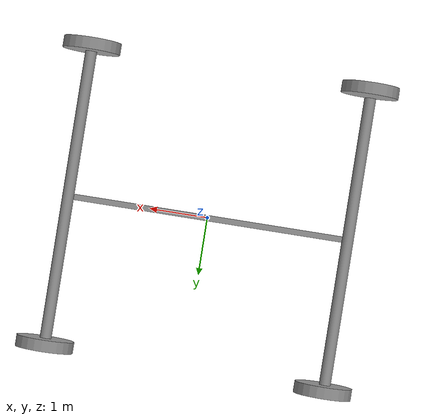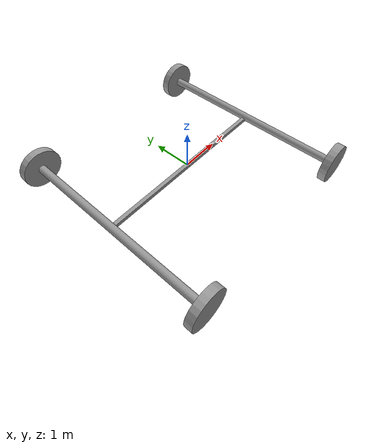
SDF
<?xml version='1.0'?>
<sdf version='1.6'>
  <model name='four-wheel'>
    <link name='link_0'>
      <inertial>
        <mass>1</mass>
        <inertia>
          <ixx>0.145833</ixx>
          <ixy>0</ixy>
          <ixz>0</ixz>
          <iyy>0.145833</iyy>
          <iyz>0</iyz>
          <izz>0.125</izz>
        </inertia>
        <pose frame=''>0 0 0 0 -0 0</pose>
      </inertial>
      <pose frame=''>-2.44876 0.027983 0.012129 -1.5696 0 0</pose>
      <gravity>1</gravity>
      <self_collide>0</self_collide>
      <kinematic>0</kinematic>
      <enable_wind>0</enable_wind>
      <visual name='visual'>
        <pose frame=''>0 0 0 0 -0 0</pose>
        <geometry>
          <cylinder>
            <radius>0.1</radius>
            <length>5</length>
          </cylinder>
        </geometry>
        <material>
          <lighting>1</lighting>
          <script>
            <uri>file://media/materials/scripts/gazebo.material</uri>
            <name>Gazebo/Grey</name>
          </script>
          <shader type='pixel'>
            <normal_map>__default__</normal_map>
          </shader>
          <ambient>0.3 0.3 0.3 1</ambient>
          <diffuse>0.7 0.7 0.7 1</diffuse>
          <specular>0.01 0.01 0.01 1</specular>
          <emissive>0 0 0 1</emissive>
        </material>
        <transparency>0</transparency>
        <cast_shadows>1</cast_shadows>
      </visual>
      <collision name='collision'>
        <laser_retro>0</laser_retro>
        <max_contacts>10</max_contacts>
        <pose frame=''>0 0 0 0 -0 0</pose>
        <geometry>
          <cylinder>
            <radius>0.1</radius>
            <length>5</length>
          </cylinder>
        </geometry>
        <surface>
          <friction>
            <ode>
              <mu>1</mu>
              <mu2>1</mu2>
              <fdir1>0 0 0</fdir1>
              <slip1>0</slip1>
              <slip2>0</slip2>
            </ode>
            <torsional>
              <coefficient>1</coefficient>
              <patch_radius>0</patch_radius>
              <surface_radius>0</surface_radius>
              <use_patch_radius>1</use_patch_radius>
              <ode>
                <slip>0</slip>
              </ode>
            </torsional>
          </friction>
          <bounce>
            <restitution_coefficient>0</restitution_coefficient>
            <threshold>1e+06</threshold>
          </bounce>
          <contact>
            <collide_without_contact>0</collide_without_contact>
            <collide_without_contact_bitmask>1</collide_without_contact_bitmask>
            <collide_bitmask>1</collide_bitmask>
            <ode>
              <soft_cfm>0</soft_cfm>
              <soft_erp>0.2</soft_erp>
              <kp>1e+13</kp>
              <kd>1</kd>
              <max_vel>0.01</max_vel>
              <min_depth>0</min_depth>
            </ode>
            <bullet>
              <split_impulse>1</split_impulse>
              <split_impulse_penetration_threshold>-0.01</split_impulse_penetration_threshold>
              <soft_cfm>0</soft_cfm>
              <soft_erp>0.2</soft_erp>
              <kp>1e+13</kp>
              <kd>1</kd>
            </bullet>
          </contact>
        </surface>
      </collision>
    </link>
    <link name='link_0_clone'>
      <inertial>
        <mass>1</mass>
        <inertia>
          <ixx>0.145833</ixx>
          <ixy>0</ixy>
          <ixz>0</ixz>
          <iyy>0.145833</iyy>
          <iyz>0</iyz>
          <izz>0.125</izz>
        </inertia>
        <pose frame=''>0 0 0 0 -0 0</pose>
      </inertial>
      <pose frame=''>2.42657 -0.016617 0.012129 -1.5696 0 0</pose>
      <gravity>1</gravity>
      <self_collide>0</self_collide>
      <kinematic>0</kinematic>
      <enable_wind>0</enable_wind>
      <visual name='visual'>
        <pose frame=''>0 0 0 0 -0 0</pose>
        <geometry>
          <cylinder>
            <radius>0.1</radius>
            <length>5</length>
          </cylinder>
        </geometry>
        <material>
          <lighting>1</lighting>
          <script>
            <uri>file://media/materials/scripts/gazebo.material</uri>
            <name>Gazebo/Grey</name>
          </script>
          <shader type='pixel'>
            <normal_map>__default__</normal_map>
          </shader>
          <ambient>0.3 0.3 0.3 1</ambient>
          <diffuse>0.7 0.7 0.7 1</diffuse>
          <specular>0.01 0.01 0.01 1</specular>
          <emissive>0 0 0 1</emissive>
        </material>
        <transparency>0</transparency>
        <cast_shadows>1</cast_shadows>
      </visual>
      <collision name='collision'>
        <laser_retro>0</laser_retro>
        <max_contacts>10</max_contacts>
        <pose frame=''>0 0 0 0 -0 0</pose>
        <geometry>
          <cylinder>
            <radius>0.1</radius>
            <length>5</length>
          </cylinder>
        </geometry>
        <surface>
          <friction>
            <ode>
              <mu>1</mu>
              <mu2>1</mu2>
              <fdir1>0 0 0</fdir1>
              <slip1>0</slip1>
              <slip2>0</slip2>
            </ode>
            <torsional>
              <coefficient>1</coefficient>
              <patch_radius>0</patch_radius>
              <surface_radius>0</surface_radius>
              <use_patch_radius>1</use_patch_radius>
              <ode>
                <slip>0</slip>
              </ode>
            </torsional>
          </friction>
          <bounce>
            <restitution_coefficient>0</restitution_coefficient>
            <threshold>1e+06</threshold>
          </bounce>
          <contact>
            <collide_without_contact>0</collide_without_contact>
            <collide_without_contact_bitmask>1</collide_without_contact_bitmask>
            <collide_bitmask>1</collide_bitmask>
            <ode>
              <soft_cfm>0</soft_cfm>
              <soft_erp>0.2</soft_erp>
              <kp>1e+13</kp>
              <kd>1</kd>
              <max_vel>0.01</max_vel>
              <min_depth>0</min_depth>
            </ode>
            <bullet>
              <split_impulse>1</split_impulse>
              <split_impulse_penetration_threshold>-0.01</split_impulse_penetration_threshold>
              <soft_cfm>0</soft_cfm>
              <soft_erp>0.2</soft_erp>
              <kp>1e+13</kp>
              <kd>1</kd>
            </bullet>
          </contact>
        </surface>
      </collision>
    </link>
    <link name='link_1'>
      <inertial>
        <mass>1</mass>
        <inertia>
          <ixx>0.145833</ixx>
          <ixy>0</ixy>
          <ixz>0</ixz>
          <iyy>0.145833</iyy>
          <iyz>0</iyz>
          <izz>0.125</izz>
        </inertia>
        <pose frame=''>0 0 0 0 -0 0</pose>
      </inertial>
      <pose frame=''>-2.42876 -2.61265 -0.007851 -1.57182 0 0</pose>
      <gravity>1</gravity>
      <self_collide>0</self_collide>
      <kinematic>0</kinematic>
      <enable_wind>0</enable_wind>
      <visual name='visual'>
        <pose frame=''>0 0 0 0 -0 0</pose>
        <geometry>
          <cylinder>
            <radius>0.5</radius>
            <length>0.2</length>
          </cylinder>
        </geometry>
        <material>
          <lighting>1</lighting>
          <script>
            <uri>file://media/materials/scripts/gazebo.material</uri>
            <name>Gazebo/Grey</name>
          </script>
          <shader type='pixel'>
            <normal_map>__default__</normal_map>
          </shader>
          <ambient>0.3 0.3 0.3 1</ambient>
          <diffuse>0.7 0.7 0.7 1</diffuse>
          <specular>0.01 0.01 0.01 1</specular>
          <emissive>0 0 0 1</emissive>
        </material>
        <transparency>0</transparency>
        <cast_shadows>1</cast_shadows>
      </visual>
      <collision name='collision'>
        <laser_retro>0</laser_retro>
        <max_contacts>10</max_contacts>
        <pose frame=''>0 0 0 0 -0 0</pose>
        <geometry>
          <cylinder>
            <radius>0.5</radius>
            <length>0.2</length>
          </cylinder>
        </geometry>
        <surface>
          <friction>
            <ode>
              <mu>1</mu>
              <mu2>1</mu2>
              <fdir1>0 0 0</fdir1>
              <slip1>0</slip1>
              <slip2>0</slip2>
            </ode>
            <torsional>
              <coefficient>1</coefficient>
              <patch_radius>0</patch_radius>
              <surface_radius>0</surface_radius>
              <use_patch_radius>1</use_patch_radius>
              <ode>
                <slip>0</slip>
              </ode>
            </torsional>
          </friction>
          <bounce>
            <restitution_coefficient>0</restitution_coefficient>
            <threshold>1e+06</threshold>
          </bounce>
          <contact>
            <collide_without_contact>0</collide_without_contact>
            <collide_without_contact_bitmask>1</collide_without_contact_bitmask>
            <collide_bitmask>1</collide_bitmask>
            <ode>
              <soft_cfm>0</soft_cfm>
              <soft_erp>0.2</soft_erp>
              <kp>1e+13</kp>
              <kd>1</kd>
              <max_vel>0.01</max_vel>
              <min_depth>0</min_depth>
            </ode>
            <bullet>
              <split_impulse>1</split_impulse>
              <split_impulse_penetration_threshold>-0.01</split_impulse_penetration_threshold>
              <soft_cfm>0</soft_cfm>
              <soft_erp>0.2</soft_erp>
              <kp>1e+13</kp>
              <kd>1</kd>
            </bullet>
          </contact>
        </surface>
      </collision>
    </link>
    <link name='link_1_clone'>
      <inertial>
        <mass>1</mass>
        <inertia>
          <ixx>0.145833</ixx>
          <ixy>0</ixy>
          <ixz>0</ixz>
          <iyy>0.145833</iyy>
          <iyz>0</iyz>
          <izz>0.125</izz>
        </inertia>
        <pose frame=''>0 0 0 0 -0 0</pose>
      </inertial>
      <pose frame=''>-2.42876 2.62866 -0.007871 -1.57182 0 0</pose>
      <gravity>1</gravity>
      <self_collide>0</self_collide>
      <kinematic>0</kinematic>
      <enable_wind>0</enable_wind>
      <visual name='visual'>
        <pose frame=''>0 0 0 0 -0 0</pose>
        <geometry>
          <cylinder>
            <radius>0.5</radius>
            <length>0.2</length>
          </cylinder>
        </geometry>
        <material>
          <lighting>1</lighting>
          <script>
            <uri>file://media/materials/scripts/gazebo.material</uri>
            <name>Gazebo/Grey</name>
          </script>
          <shader type='pixel'>
            <normal_map>__default__</normal_map>
          </shader>
          <ambient>0.3 0.3 0.3 1</ambient>
          <diffuse>0.7 0.7 0.7 1</diffuse>
          <specular>0.01 0.01 0.01 1</specular>
          <emissive>0 0 0 1</emissive>
        </material>
        <transparency>0</transparency>
        <cast_shadows>1</cast_shadows>
      </visual>
      <collision name='collision'>
        <laser_retro>0</laser_retro>
        <max_contacts>10</max_contacts>
        <pose frame=''>0 0 0 0 -0 0</pose>
        <geometry>
          <cylinder>
            <radius>0.5</radius>
            <length>0.2</length>
          </cylinder>
        </geometry>
        <surface>
          <friction>
            <ode>
              <mu>1</mu>
              <mu2>1</mu2>
              <fdir1>0 0 0</fdir1>
              <slip1>0</slip1>
              <slip2>0</slip2>
            </ode>
            <torsional>
              <coefficient>1</coefficient>
              <patch_radius>0</patch_radius>
              <surface_radius>0</surface_radius>
              <use_patch_radius>1</use_patch_radius>
              <ode>
                <slip>0</slip>
              </ode>
            </torsional>
          </friction>
          <bounce>
            <restitution_coefficient>0</restitution_coefficient>
            <threshold>1e+06</threshold>
          </bounce>
          <contact>
            <collide_without_contact>0</collide_without_contact>
            <collide_without_contact_bitmask>1</collide_without_contact_bitmask>
            <collide_bitmask>1</collide_bitmask>
            <ode>
              <soft_cfm>0</soft_cfm>
              <soft_erp>0.2</soft_erp>
              <kp>1e+13</kp>
              <kd>1</kd>
              <max_vel>0.01</max_vel>
              <min_depth>0</min_depth>
            </ode>
            <bullet>
              <split_impulse>1</split_impulse>
              <split_impulse_penetration_threshold>-0.01</split_impulse_penetration_threshold>
              <soft_cfm>0</soft_cfm>
              <soft_erp>0.2</soft_erp>
              <kp>1e+13</kp>
              <kd>1</kd>
            </bullet>
          </contact>
        </surface>
      </collision>
    </link>
    <link name='link_1_clone_0'>
      <inertial>
        <mass>1</mass>
        <inertia>
          <ixx>0.145833</ixx>
          <ixy>0</ixy>
          <ixz>0</ixz>
          <iyy>0.145833</iyy>
          <iyz>0</iyz>
          <izz>0.125</izz>
        </inertia>
        <pose frame=''>0 0 0 0 -0 0</pose>
      </inertial>
      <pose frame=''>2.42657 2.58401 0.012129 -1.57182 0 0</pose>
      <gravity>1</gravity>
      <self_collide>0</self_collide>
      <kinematic>0</kinematic>
      <enable_wind>0</enable_wind>
      <visual name='visual'>
        <pose frame=''>0 0 0 0 -0 0</pose>
        <geometry>
          <cylinder>
            <radius>0.5</radius>
            <length>0.2</length>
          </cylinder>
        </geometry>
        <material>
          <lighting>1</lighting>
          <script>
            <uri>file://media/materials/scripts/gazebo.material</uri>
            <name>Gazebo/Grey</name>
          </script>
          <shader type='pixel'>
            <normal_map>__default__</normal_map>
          </shader>
          <ambient>0.3 0.3 0.3 1</ambient>
          <diffuse>0.7 0.7 0.7 1</diffuse>
          <specular>0.01 0.01 0.01 1</specular>
          <emissive>0 0 0 1</emissive>
        </material>
        <transparency>0</transparency>
        <cast_shadows>1</cast_shadows>
      </visual>
      <collision name='collision'>
        <laser_retro>0</laser_retro>
        <max_contacts>10</max_contacts>
        <pose frame=''>0 0 0 0 -0 0</pose>
        <geometry>
          <cylinder>
            <radius>0.5</radius>
            <length>0.2</length>
          </cylinder>
        </geometry>
        <surface>
          <friction>
            <ode>
              <mu>1</mu>
              <mu2>1</mu2>
              <fdir1>0 0 0</fdir1>
              <slip1>0</slip1>
              <slip2>0</slip2>
            </ode>
            <torsional>
              <coefficient>1</coefficient>
              <patch_radius>0</patch_radius>
              <surface_radius>0</surface_radius>
              <use_patch_radius>1</use_patch_radius>
              <ode>
                <slip>0</slip>
              </ode>
            </torsional>
          </friction>
          <bounce>
            <restitution_coefficient>0</restitution_coefficient>
            <threshold>1e+06</threshold>
          </bounce>
          <contact>
            <collide_without_contact>0</collide_without_contact>
            <collide_without_contact_bitmask>1</collide_without_contact_bitmask>
            <collide_bitmask>1</collide_bitmask>
            <ode>
              <soft_cfm>0</soft_cfm>
              <soft_erp>0.2</soft_erp>
              <kp>1e+13</kp>
              <kd>1</kd>
              <max_vel>0.01</max_vel>
              <min_depth>0</min_depth>
            </ode>
            <bullet>
              <split_impulse>1</split_impulse>
              <split_impulse_penetration_threshold>-0.01</split_impulse_penetration_threshold>
              <soft_cfm>0</soft_cfm>
              <soft_erp>0.2</soft_erp>
              <kp>1e+13</kp>
              <kd>1</kd>
            </bullet>
          </contact>
        </surface>
      </collision>
    </link>
    <link name='link_1_clone_1'>
      <inertial>
        <mass>1</mass>
        <inertia>
          <ixx>0.145833</ixx>
          <ixy>0</ixy>
          <ixz>0</ixz>
          <iyy>0.145833</iyy>
          <iyz>0</iyz>
          <izz>0.125</izz>
        </inertia>
        <pose frame=''>0 0 0 0 -0 0</pose>
      </inertial>
      <pose frame=''>2.42657 -2.61725 0.012129 -1.57182 0 0</pose>
      <gravity>1</gravity>
      <self_collide>0</self_collide>
      <kinematic>0</kinematic>
      <enable_wind>0</enable_wind>
      <visual name='visual'>
        <pose frame=''>0 0 0 0 -0 0</pose>
        <geometry>
          <cylinder>
            <radius>0.5</radius>
            <length>0.2</length>
          </cylinder>
        </geometry>
        <material>
          <lighting>1</lighting>
          <script>
            <uri>file://media/materials/scripts/gazebo.material</uri>
            <name>Gazebo/Grey</name>
          </script>
          <shader type='pixel'>
            <normal_map>__default__</normal_map>
          </shader>
          <ambient>0.3 0.3 0.3 1</ambient>
          <diffuse>0.7 0.7 0.7 1</diffuse>
          <specular>0.01 0.01 0.01 1</specular>
          <emissive>0 0 0 1</emissive>
        </material>
        <transparency>0</transparency>
        <cast_shadows>1</cast_shadows>
      </visual>
      <collision name='collision'>
        <laser_retro>0</laser_retro>
        <max_contacts>10</max_contacts>
        <pose frame=''>0 0 0 0 -0 0</pose>
        <geometry>
          <cylinder>
            <radius>0.5</radius>
            <length>0.2</length>
          </cylinder>
        </geometry>
        <surface>
          <friction>
            <ode>
              <mu>1</mu>
              <mu2>1</mu2>
              <fdir1>0 0 0</fdir1>
              <slip1>0</slip1>
              <slip2>0</slip2>
            </ode>
            <torsional>
              <coefficient>1</coefficient>
              <patch_radius>0</patch_radius>
              <surface_radius>0</surface_radius>
              <use_patch_radius>1</use_patch_radius>
              <ode>
                <slip>0</slip>
              </ode>
            </torsional>
          </friction>
          <bounce>
            <restitution_coefficient>0</restitution_coefficient>
            <threshold>1e+06</threshold>
          </bounce>
          <contact>
            <collide_without_contact>0</collide_without_contact>
            <collide_without_contact_bitmask>1</collide_without_contact_bitmask>
            <collide_bitmask>1</collide_bitmask>
            <ode>
              <soft_cfm>0</soft_cfm>
              <soft_erp>0.2</soft_erp>
              <kp>1e+13</kp>
              <kd>1</kd>
              <max_vel>0.01</max_vel>
              <min_depth>0</min_depth>
            </ode>
            <bullet>
              <split_impulse>1</split_impulse>
              <split_impulse_penetration_threshold>-0.01</split_impulse_penetration_threshold>
              <soft_cfm>0</soft_cfm>
              <soft_erp>0.2</soft_erp>
              <kp>1e+13</kp>
              <kd>1</kd>
            </bullet>
          </contact>
        </surface>
      </collision>
    </link>
    <link name='link_2'>
      <inertial>
        <mass>1</mass>
        <inertia>
          <ixx>0.166667</ixx>
          <ixy>0</ixy>
          <ixz>0</ixz>
          <iyy>0.166667</iyy>
          <iyz>0</iyz>
          <izz>0.166667</izz>
        </inertia>
        <pose frame=''>0 0 0 0 -0 0</pose>
      </inertial>
      <pose frame=''>0.026568 0.005864 -0.032791 0 -0 0</pose>
      <gravity>1</gravity>
      <self_collide>0</self_collide>
      <kinematic>0</kinematic>
      <enable_wind>0</enable_wind>
      <visual name='visual'>
        <pose frame=''>0 0 0 0 -0 0</pose>
        <geometry>
          <box>
            <size>5 0.1 0.1</size>
          </box>
        </geometry>
        <material>
          <lighting>1</lighting>
          <script>
            <uri>file://media/materials/scripts/gazebo.material</uri>
            <name>Gazebo/Grey</name>
          </script>
          <shader type='pixel'>
            <normal_map>__default__</normal_map>
          </shader>
          <ambient>0.3 0.3 0.3 1</ambient>
          <diffuse>0.7 0.7 0.7 1</diffuse>
          <specular>0.01 0.01 0.01 1</specular>
          <emissive>0 0 0 1</emissive>
        </material>
        <transparency>0</transparency>
        <cast_shadows>1</cast_shadows>
      </visual>
      <collision name='collision'>
        <laser_retro>0</laser_retro>
        <max_contacts>10</max_contacts>
        <pose frame=''>0 0 0 0 -0 0</pose>
        <geometry>
          <box>
            <size>5 0.1 0.1</size>
          </box>
        </geometry>
        <surface>
          <friction>
            <ode>
              <mu>1</mu>
              <mu2>1</mu2>
              <fdir1>0 0 0</fdir1>
              <slip1>0</slip1>
              <slip2>0</slip2>
            </ode>
            <torsional>
              <coefficient>1</coefficient>
              <patch_radius>0</patch_radius>
              <surface_radius>0</surface_radius>
              <use_patch_radius>1</use_patch_radius>
              <ode>
                <slip>0</slip>
              </ode>
            </torsional>
          </friction>
          <bounce>
            <restitution_coefficient>0</restitution_coefficient>
            <threshold>1e+06</threshold>
          </bounce>
          <contact>
            <collide_without_contact>0</collide_without_contact>
            <collide_without_contact_bitmask>1</collide_without_contact_bitmask>
            <collide_bitmask>1</collide_bitmask>
            <ode>
              <soft_cfm>0</soft_cfm>
              <soft_erp>0.2</soft_erp>
              <kp>1e+13</kp>
              <kd>1</kd>
              <max_vel>0.01</max_vel>
              <min_depth>0</min_depth>
            </ode>
            <bullet>
              <split_impulse>1</split_impulse>
              <split_impulse_penetration_threshold>-0.01</split_impulse_penetration_threshold>
              <soft_cfm>0</soft_cfm>
              <soft_erp>0.2</soft_erp>
              <kp>1e+13</kp>
              <kd>1</kd>
            </bullet>
          </contact>
        </surface>
      </collision>
    </link>
    <joint name='link_0_JOINT_0' type='fixed'>
      <parent>link_0</parent>
      <child>link_2</child>
      <pose frame=''>0 0 0 0 -0 0</pose>
      <physics>
        <ode>
          <limit>
            <cfm>0</cfm>
            <erp>0.2</erp>
          </limit>
          <suspension>
            <cfm>0</cfm>
            <erp>0.2</erp>
          </suspension>
        </ode>
      </physics>
    </joint>
    <joint name='link_0_JOINT_2' type='revolute'>
      <parent>link_0</parent>
      <child>link_1</child>
      <pose frame=''>0 0 0 0 -0 0</pose>
      <axis>
        <xyz>0 0 1</xyz>
        <use_parent_model_frame>0</use_parent_model_frame>
        <limit>
          <lower>-1.79769e+308</lower>
          <upper>1.79769e+308</upper>
          <effort>-1</effort>
          <velocity>-1</velocity>
        </limit>
        <dynamics>
          <spring_reference>0</spring_reference>
          <spring_stiffness>0</spring_stiffness>
          <damping>0</damping>
        </dynamics>
      </axis>
      <physics>
        <ode>
          <limit>
            <cfm>0</cfm>
            <erp>0.2</erp>
          </limit>
          <suspension>
            <cfm>0</cfm>
            <erp>0.2</erp>
          </suspension>
        </ode>
      </physics>
    </joint>
    <joint name='link_0_JOINT_3' type='revolute'>
      <parent>link_0</parent>
      <child>link_1_clone</child>
      <pose frame=''>0 0 0 0 -0 0</pose>
      <axis>
        <xyz>0 0 1</xyz>
        <use_parent_model_frame>0</use_parent_model_frame>
        <limit>
          <lower>-1.79769e+308</lower>
          <upper>1.79769e+308</upper>
          <effort>-1</effort>
          <velocity>-1</velocity>
        </limit>
        <dynamics>
          <spring_reference>0</spring_reference>
          <spring_stiffness>0</spring_stiffness>
          <damping>0</damping>
        </dynamics>
      </axis>
      <physics>
        <ode>
          <limit>
            <cfm>0</cfm>
            <erp>0.2</erp>
          </limit>
          <suspension>
            <cfm>0</cfm>
            <erp>0.2</erp>
          </suspension>
        </ode>
      </physics>
    </joint>
    <joint name='link_0_clone_JOINT_1' type='fixed'>
      <parent>link_0_clone</parent>
      <child>link_2</child>
      <pose frame=''>0 0 0 0 -0 0</pose>
      <physics>
        <ode>
          <limit>
            <cfm>0</cfm>
            <erp>0.2</erp>
          </limit>
          <suspension>
            <cfm>0</cfm>
            <erp>0.2</erp>
          </suspension>
        </ode>
      </physics>
    </joint>
    <joint name='link_0_clone_JOINT_4' type='revolute'>
      <parent>link_0_clone</parent>
      <child>link_1_clone_0</child>
      <pose frame=''>0 0 0 0 -0 0</pose>
      <axis>
        <xyz>0 0 1</xyz>
        <use_parent_model_frame>0</use_parent_model_frame>
        <limit>
          <lower>-1.79769e+308</lower>
          <upper>1.79769e+308</upper>
          <effort>-1</effort>
          <velocity>-1</velocity>
        </limit>
        <dynamics>
          <spring_reference>0</spring_reference>
          <spring_stiffness>0</spring_stiffness>
          <damping>0</damping>
        </dynamics>
      </axis>
      <physics>
        <ode>
          <limit>
            <cfm>0</cfm>
            <erp>0.2</erp>
          </limit>
          <suspension>
            <cfm>0</cfm>
            <erp>0.2</erp>
          </suspension>
        </ode>
      </physics>
    </joint>
    <joint name='link_0_clone_JOINT_5' type='revolute'>
      <parent>link_0_clone</parent>
      <child>link_1_clone_1</child>
      <pose frame=''>0 0 0 0 -0 0</pose>
      <axis>
        <xyz>0 0 1</xyz>
        <use_parent_model_frame>0</use_parent_model_frame>
        <limit>
          <lower>-1.79769e+308</lower>
          <upper>1.79769e+308</upper>
          <effort>-1</effort>
          <velocity>-1</velocity>
        </limit>
        <dynamics>
          <spring_reference>0</spring_reference>
          <spring_stiffness>0</spring_stiffness>
          <damping>0</damping>
        </dynamics>
      </axis>
      <physics>
        <ode>
          <limit>
            <cfm>0</cfm>
            <erp>0.2</erp>
          </limit>
          <suspension>
            <cfm>0</cfm>
            <erp>0.2</erp>
          </suspension>
        </ode>
      </physics>
    </joint>
    <static>0</static>
    <allow_auto_disable>1</allow_auto_disable>
  </model>
</sdf>
